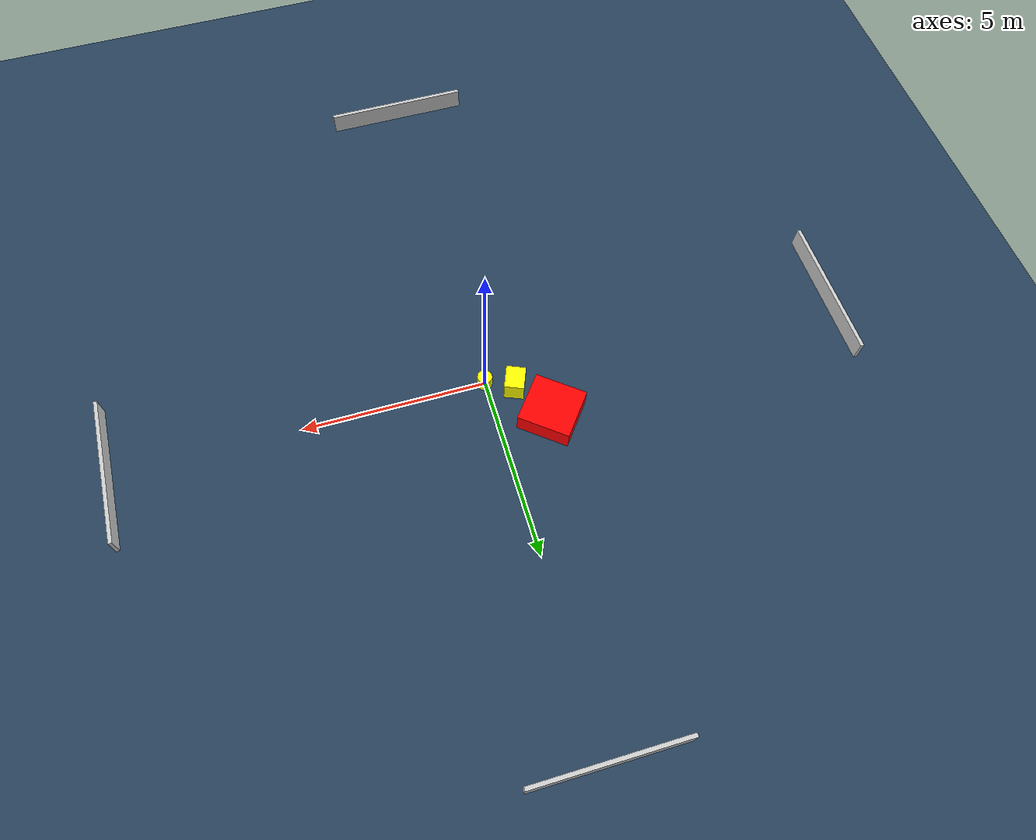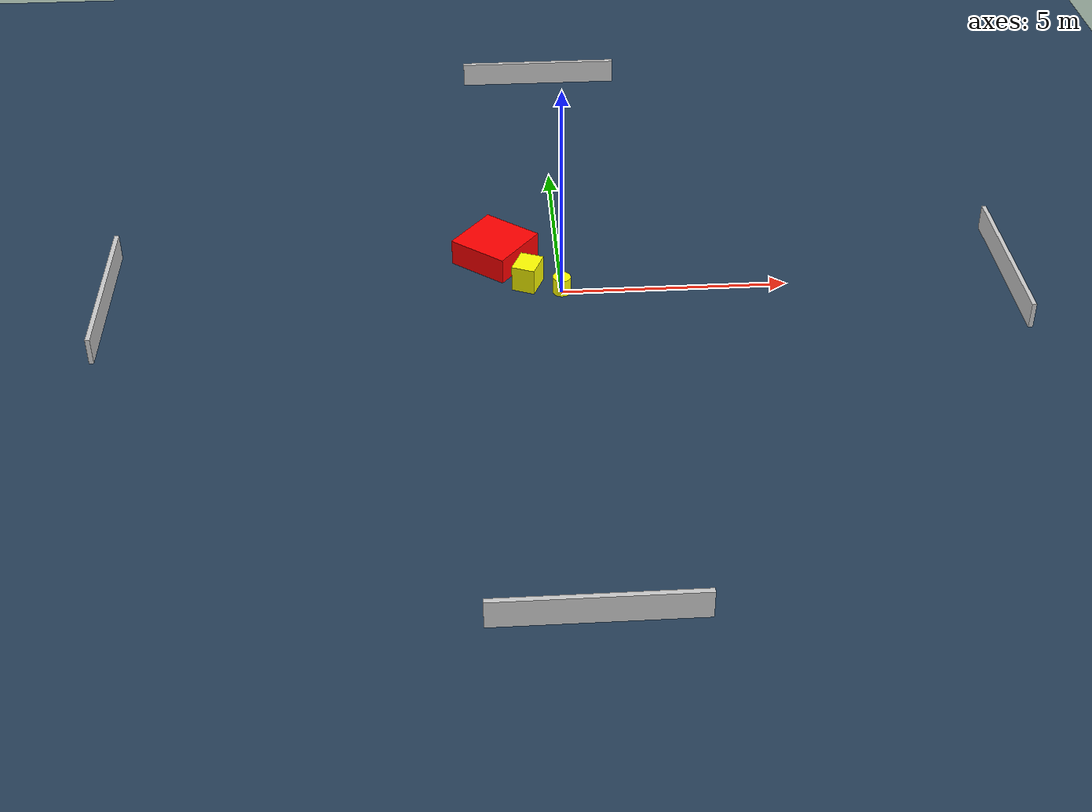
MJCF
<?xml version="1.0" ?>
<mujoco model="generated_environment">
  <option timestep="0.01" integrator="RK4" cone="elliptic"/>
  <default>
    <geom density="1"/>
  </default>
  <asset>
    <texture builtin="gradient" height="3072" name="skybox" rgb1="0.3 0.5 0.7" rgb2="0 0 0" type="skybox" width="512"/>
    <texture builtin="checker" height="300" name="groundplane" rgb1="0.2 0.3 0.4" rgb2="0.1 0.2 0.3" type="2d" width="300"/>
    <material name="groundplane" reflectance="0.2" texrepeat="5 5" texture="groundplane"/>
  </asset>
  <worldbody>
    <light dir="0 0 -1" directional="true" pos="0 0 1.5"/>
    <geom condim="3" friction="0.5 0.005 0.001" material="groundplane" name="floor" pos="0 0 0" size="0 0 0.05" type="plane"/>
    <body name="walls">
      <geom name="wall_1" condim="4" pos="-10.0 0.0 0.3" rgba="0.800000011920929 0.800000011920929 0.800000011920929 1.0" size="0.05 2.0 0.3" type="box"/>
      <geom name="wall_2" condim="4" pos="10.0 0.0 0.3" rgba="0.800000011920929 0.800000011920929 0.800000011920929 1.0" size="0.05 2.0 0.3" type="box"/>
      <geom name="wall_3" condim="4" pos="0.0 -10.0 0.3" rgba="0.800000011920929 0.800000011920929 0.800000011920929 1.0" size="2.0 0.05 0.3" type="box"/>
      <geom name="wall_4" condim="4" pos="0.0 10.0 0.3" rgba="0.800000011920929 0.800000011920929 0.800000011920929 1.0" size="2.0 0.05 0.3" type="box"/>
    </body>
    <body name="robot">
      <joint name="joint_x" type="slide" pos="0 0 0" axis="1 0 0"/>
      <joint name="joint_y" type="slide" pos="0 0 0" axis="0 1 0"/>
      <geom name="robot" type="cylinder" pos="0.0 0.0 0.2" size="0.2 0.2 0.0" mass="5.0" friction="1.0 0.005 0.0001" condim="4" rgba="1.0 1.0 0.0 1.0"/>
    </body>
    <body name="obstacle_1_movable">
      <geom name="obstacle_1_movable" condim="4" pos="-0.7402026102190322 0.33547107050320113 0.3" euler="0 0 157.7738955714428" friction="0.0 0.005 0.001" rgba="1.0 1.0 0.0 1.0" size="0.26367000584779576 0.3177774264391249 0.3" type="box" mass="0.1"/>
      <joint type="free"/>
    </body>
    <body name="obstacle_2_static">
      <geom name="obstacle_2_static" condim="4" pos="-1.4316067713347302 1.3902680467619037 0.3" euler="0 0 321.66231153774555" friction="0.0 0.005 0.001" rgba="1.0 0.0 0.0 1.0" size="0.7105880396120448 0.6860752553611174 0.3" type="box"/>
    </body>
  </worldbody>
  <actuator>
    <motor name="actuator_x" joint="joint_x" gear="1" ctrlrange="-1 1"/>
    <motor name="actuator_y" joint="joint_y" gear="1" ctrlrange="-1 1"/>
  </actuator>
</mujoco>
